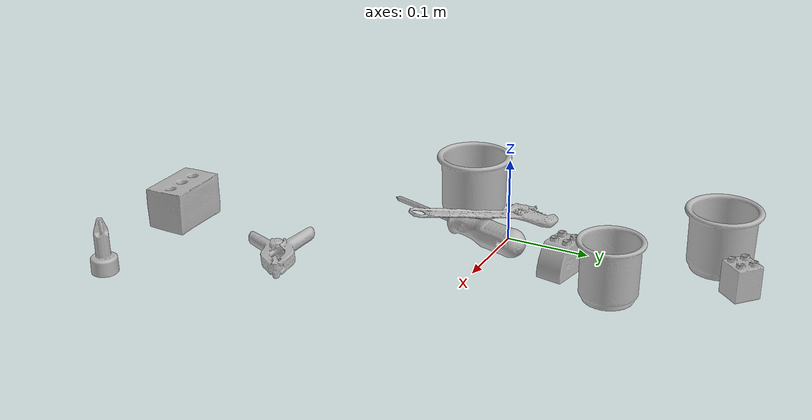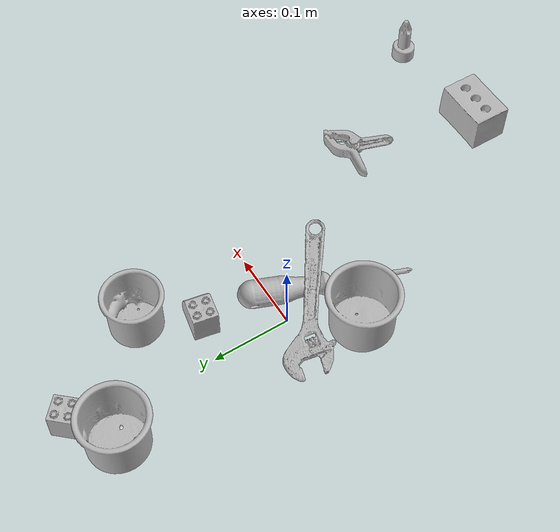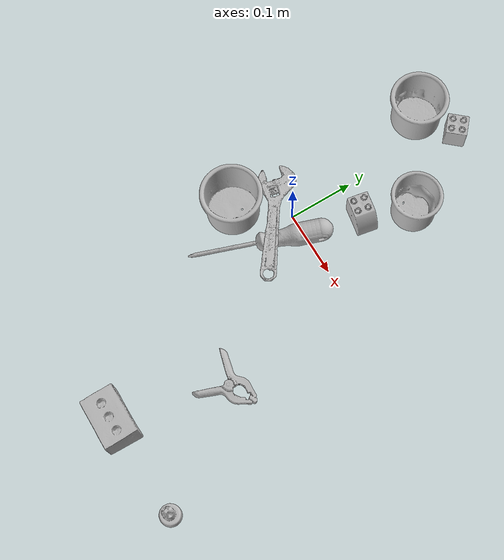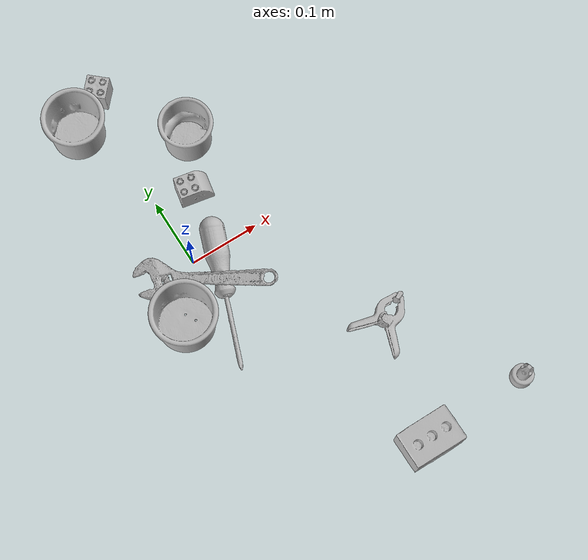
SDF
<sdf version="1.4">
  <world name="default">
    <light name="light1" type="point">
      <pose>0 0 1 0 0 0</pose>
      <diffuse>3 3 3 1</diffuse>
      <specular>3 3 3 1</specular>
    </light>
    <light name="light2" type="point">
      <pose>0 0.5 2 0 0 0</pose>
      <diffuse>1 1 1 1</diffuse>
      <specular>1 1 1 1</specular>
    </light>
    <light name="light3" type="point">
      <pose>0 0.5 2 0 0 0</pose>
      <diffuse>3 3 3 1</diffuse>
      <specular>3 3 3 1</specular>
    </light>
    <scene>
      <ambient>0.7 0.7 0.7</ambient>
    </scene>
    <model name="cup1">
      <link name="link_cup1">
        <collision name="default">
          <geometry>
            <mesh>
              <uri>model://h_cups/collision_meshes/collision.obj</uri>
              <scale>1.0 1.0 1.0</scale>
            </mesh>
          </geometry>
          <surface>
            <friction>
              <ode>
                <mu>0.5</mu>
                <mu2>0.5</mu2>
              </ode>
            </friction>
          <contact>
        <ode>
            <max_vel>0</max_vel>
            <min_depth>0.0001</min_depth>
            <kp>1e8</kp>
        </ode>
    </contact></surface>
        </collision>
        <visual name="default">
          <geometry>
            <mesh>
              <uri>model://h_cups/visual_meshes/visual.dae</uri>
              <scale>1.0 1.0 1.0</scale>
            </mesh>
          </geometry>
        </visual>
        <inertial>
          <mass>0.09017354249954224</mass>
          <pose>-2.702734127524309e-05 0.00023018653155304492 -0.0018405391601845622 -0.024362361674121313 0.06545247408237653 0.12884890922354367</pose>
          <inertia>
            <ixx>0.00011645493</ixx>
            <iyy>0.000115065246</iyy>
            <izz>0.00012212929</izz>
            <ixy>0</ixy>
            <ixz>0</ixz>
            <iyz>0</iyz>
          </inertia>
        </inertial>
      </link>
      <pose>-0.05333087965846062 -0.07057374715805054 0.037757985293865204 -1.3919903410285669e-07 2.1350784764130816e-08 -2.7313373890721477</pose>
    </model>
    <model name="cup2">
      <link name="link_cup2">
        <collision name="default">
          <geometry>
            <mesh>
              <uri>model://g_cups/collision_meshes/collision.obj</uri>
              <scale>1.0 1.0 1.0</scale>
            </mesh>
          </geometry>
          <surface>
            <friction>
              <ode>
                <mu>0.5</mu>
                <mu2>0.5</mu2>
              </ode>
            </friction>
          <contact>
        <ode>
            <max_vel>0</max_vel>
            <min_depth>0.0001</min_depth>
            <kp>1e8</kp>
        </ode>
    </contact></surface>
        </collision>
        <visual name="default">
          <geometry>
            <mesh>
              <uri>model://g_cups/visual_meshes/visual.dae</uri>
              <scale>1.0 1.0 1.0</scale>
            </mesh>
          </geometry>
        </visual>
        <inertial>
          <mass>0.07892031967639923</mass>
          <pose>-0.0007946275873109698 -4.206384619465098e-05 -0.0021329368464648724 -0.21381953376637775 -0.31410844314425407 0.31119468358147234</pose>
          <inertia>
            <ixx>9.211769e-05</ixx>
            <iyy>9.180432e-05</iyy>
            <izz>9.541806e-05</izz>
            <ixy>0</ixy>
            <ixz>0</ixz>
            <iyz>0</iyz>
          </inertia>
        </inertial>
      </link>
      <pose>-0.038008179515600204 0.24310310184955597 0.03720301389694214 -1.0805217675938377e-07 -9.100595181248297e-07 0.22009548032090365</pose>
    </model>
    <model name="cup3">
      <link name="link_cup3">
        <collision name="default">
          <geometry>
            <mesh>
              <uri>model://e_cups/collision_meshes/collision.obj</uri>
              <scale>1.0 1.0 1.0</scale>
            </mesh>
          </geometry>
          <surface>
            <friction>
              <ode>
                <mu>0.5</mu>
                <mu2>0.5</mu2>
              </ode>
            </friction>
          <contact>
        <ode>
            <max_vel>0</max_vel>
            <min_depth>0.0001</min_depth>
            <kp>1e8</kp>
        </ode>
    </contact></surface>
        </collision>
        <visual name="default">
          <geometry>
            <mesh>
              <uri>model://e_cups/visual_meshes/visual.dae</uri>
              <scale>1.0 1.0 1.0</scale>
            </mesh>
          </geometry>
        </visual>
        <inertial>
          <mass>0.08743876963853836</mass>
          <pose>0.0011355745373293757 0.0028797851409763098 -0.0038829741533845663 0.6952398618358687 0.08767880823198544 -0.5235243888876825</pose>
          <inertia>
            <ixx>7.709911e-05</ixx>
            <iyy>8.05796e-05</iyy>
            <izz>7.3715666e-05</izz>
            <ixy>0</ixy>
            <ixz>0</ixz>
            <iyz>0</iyz>
          </inertia>
        </inertial>
      </link>
      <pose>0.08728374540805817 0.15526725351810455 0.0355997309088707 0.00016208087019536227 -0.00020505495736445622 0.1845838882794242</pose>
    </model>
    <model name="toy1">
      <link name="link_toy1">
        <collision name="default">
          <geometry>
            <mesh>
              <uri>model://d_lego_duplo/collision_meshes/collision.obj</uri>
              <scale>1.0 1.0 1.0</scale>
            </mesh>
          </geometry>
          <surface>
            <friction>
              <ode>
                <mu>0.5</mu>
                <mu2>0.5</mu2>
              </ode>
            </friction>
          <contact>
        <ode>
            <max_vel>0</max_vel>
            <min_depth>0.0001</min_depth>
            <kp>1e8</kp>
        </ode>
    </contact></surface>
        </collision>
        <visual name="default">
          <geometry>
            <mesh>
              <uri>model://d_lego_duplo/visual_meshes/visual.dae</uri>
              <scale>1.0 1.0 1.0</scale>
            </mesh>
          </geometry>
        </visual>
        <inertial>
          <mass>0.04292278364300728</mass>
          <pose>0.002830562647432089 0.00016366151976399124 0.0008589805802330375 0.08010895821025366 -0.3835521883517419 0.0010296961053417666</pose>
          <inertia>
            <ixx>8.309218e-06</ixx>
            <iyy>1.1793034e-05</iyy>
            <izz>1.1372727e-05</izz>
            <ixy>0</ixy>
            <ixz>0</ixz>
            <iyz>0</iyz>
          </inertia>
        </inertial>
      </link>
      <pose>0.05521514266729355 0.0865660309791565 0.021739916875958443 -7.880303507453776e-06 -1.0694147994011861e-05 2.9574148942251677</pose>
    </model>
    <model name="toy2">
      <link name="link_toy2">
        <collision name="default">
          <geometry>
            <mesh>
              <uri>model://foam_brick/collision_meshes/collision.obj</uri>
              <scale>1.0 1.0 1.0</scale>
            </mesh>
          </geometry>
          <surface>
            <friction>
              <ode>
                <mu>0.5</mu>
                <mu2>0.5</mu2>
              </ode>
            </friction>
          <contact>
        <ode>
            <max_vel>0</max_vel>
            <min_depth>0.0001</min_depth>
            <kp>1e8</kp>
        </ode>
    </contact></surface>
        </collision>
        <visual name="default">
          <geometry>
            <mesh>
              <uri>model://foam_brick/visual_meshes/visual.dae</uri>
              <scale>1.0 1.0 1.0</scale>
            </mesh>
          </geometry>
        </visual>
        <inertial>
          <mass>0.21218973398208618</mass>
          <pose>-0.0002522472059354186 0.00034584320383146405 -0.0002532101352699101 -0.2940188212014215 0.017274433063530492 -0.0007449861184219897</pose>
          <inertia>
            <ixx>9.268843e-05</ixx>
            <iyy>0.00014798183</iyy>
            <izz>0.00014986254</izz>
            <ixy>0</ixy>
            <ixz>0</ixz>
            <iyz>0</iyz>
          </inertia>
        </inertial>
      </link>
      <pose>0.13178546726703644 -0.3742973208427429 0.02592279575765133 0.013416543497075412 0.0041530144279081456 -0.007220770687263195</pose>
    </model>
    <model name="toy3">
      <link name="link_toy3">
        <collision name="default">
          <geometry>
            <mesh>
              <uri>model://f_lego_duplo/collision_meshes/collision.obj</uri>
              <scale>1.0 1.0 1.0</scale>
            </mesh>
          </geometry>
          <surface>
            <friction>
              <ode>
                <mu>0.5</mu>
                <mu2>0.5</mu2>
              </ode>
            </friction>
          <contact>
        <ode>
            <max_vel>0</max_vel>
            <min_depth>0.0001</min_depth>
            <kp>1e8</kp>
        </ode>
    </contact></surface>
        </collision>
        <visual name="default">
          <geometry>
            <mesh>
              <uri>model://f_lego_duplo/visual_meshes/visual.dae</uri>
              <scale>1.0 1.0 1.0</scale>
            </mesh>
          </geometry>
        </visual>
        <inertial>
          <mass>0.024021470919251442</mass>
          <pose>2.3694197807344608e-05 0.00013393140397965908 0.0018837875686585903 0.02983869554967358 -0.014424868856459862 -0.6756716113514201</pose>
          <inertia>
            <ixx>5.075869e-06</ixx>
            <iyy>5.1210886e-06</iyy>
            <izz>4.4060694e-06</izz>
            <ixy>0</ixy>
            <ixz>0</ixz>
            <iyz>0</iyz>
          </inertia>
        </inertial>
      </link>
      <pose>0.015457846224308014 0.2799186110496521 0.02187100425362587 -7.971045574004192e-07 -6.346118558662494e-07 0.8392728632627802</pose>
    </model>
    <model name="toy4">
      <link name="link_toy4">
        <collision name="default">
          <geometry>
            <mesh>
              <uri>model://d_toy_airplane/collision_meshes/collision.obj</uri>
              <scale>1.0 1.0 1.0</scale>
            </mesh>
          </geometry>
          <surface>
            <friction>
              <ode>
                <mu>0.5</mu>
                <mu2>0.5</mu2>
              </ode>
            </friction>
          <contact>
        <ode>
            <max_vel>0</max_vel>
            <min_depth>0.0001</min_depth>
            <kp>1e8</kp>
        </ode>
    </contact></surface>
        </collision>
        <visual name="default">
          <geometry>
            <mesh>
              <uri>model://d_toy_airplane/visual_meshes/visual.dae</uri>
              <scale>1.0 1.0 1.0</scale>
            </mesh>
          </geometry>
        </visual>
        <inertial>
          <mass>0.024586454033851624</mass>
          <pose>9.410288475919515e-05 -5.809331560158171e-05 -0.011728096753358841 0.0002662237897190017 0.004679022855495211 0.5193045098973154</pose>
          <inertia>
            <ixx>7.370539e-06</ixx>
            <iyy>7.376099e-06</iyy>
            <izz>2.2252145e-06</izz>
            <ixy>0</ixy>
            <ixz>0</ixz>
            <iyz>0</iyz>
          </inertia>
        </inertial>
      </link>
      <pose>0.28455451130867004 -0.36955758929252625 0.03333881497383118 5.860763588629202e-05 -9.94487695724087e-05 -2.8587029574382514</pose>
    </model>
    <model name="hardware1">
      <link name="link_hardware1">
        <collision name="default">
          <geometry>
            <mesh>
              <uri>model://phillips_screwdriver/collision_meshes/collision.obj</uri>
              <scale>1.0 1.0 1.0</scale>
            </mesh>
          </geometry>
          <surface>
            <friction>
              <ode>
                <mu>0.5</mu>
                <mu2>0.5</mu2>
              </ode>
            </friction>
          <contact>
        <ode>
            <max_vel>0</max_vel>
            <min_depth>0.0001</min_depth>
            <kp>1e8</kp>
        </ode>
    </contact></surface>
        </collision>
        <visual name="default">
          <geometry>
            <mesh>
              <uri>model://phillips_screwdriver/visual_meshes/visual.dae</uri>
              <scale>1.0 1.0 1.0</scale>
            </mesh>
          </geometry>
        </visual>
        <inertial>
          <mass>0.10962587594985962</mass>
          <pose>-0.04777182266116142 0.0010362300090491772 -0.00045555492397397757 -0.1572763288958183 0.005850995451121224 -0.002156747064170485</pose>
          <inertia>
            <ixx>1.2879916e-05</ixx>
            <iyy>0.00016149164</iyy>
            <izz>0.00016162884</izz>
            <ixy>0</ixy>
            <ixz>0</ixz>
            <iyz>0</iyz>
          </inertia>
        </inertial>
      </link>
      <pose>0.013140449300408363 -0.05978728458285332 0.01540965773165226 0.0656730093872746 0.037571666561030836 -1.9223575238897757</pose>
    </model>
    <model name="hardware2">
      <link name="link_hardware2">
        <collision name="default">
          <geometry>
            <mesh>
              <uri>model://adjustable_wrench/collision_meshes/collision.obj</uri>
              <scale>1.0 1.0 1.0</scale>
            </mesh>
          </geometry>
          <surface>
            <friction>
              <ode>
                <mu>0.5</mu>
                <mu2>0.5</mu2>
              </ode>
            </friction>
          <contact>
        <ode>
            <max_vel>0</max_vel>
            <min_depth>0.0001</min_depth>
            <kp>1e8</kp>
        </ode>
    </contact></surface>
        </collision>
        <visual name="default">
          <geometry>
            <mesh>
              <uri>model://adjustable_wrench/visual_meshes/visual.dae</uri>
              <scale>1.0 1.0 1.0</scale>
            </mesh>
          </geometry>
        </visual>
        <inertial>
          <mass>0.02999398298561573</mass>
          <pose>0.03740980848670006 -0.002896887483075261 -0.001114922808483243 -0.014473357351062987 0.006656019865341655 -0.010954188906160397</pose>
          <inertia>
            <ixx>6.138701e-06</ixx>
            <iyy>7.184631e-05</iyy>
            <izz>7.765895e-05</izz>
            <ixy>0</ixy>
            <ixz>0</ixz>
            <iyz>0</iyz>
          </inertia>
        </inertial>
      </link>
      <pose>-0.006288325414061546 -0.03293725848197937 0.024708203971385956 0.008524160941113653 0.2238047412567915 2.5094758758202054</pose>
    </model>
    <model name="hardware3">
      <link name="link_hardware3">
        <collision name="default">
          <geometry>
            <mesh>
              <uri>model://medium_clamp/collision_meshes/collision.obj</uri>
              <scale>1.0 1.0 1.0</scale>
            </mesh>
          </geometry>
          <surface>
            <friction>
              <ode>
                <mu>0.5</mu>
                <mu2>0.5</mu2>
              </ode>
            </friction>
          <contact>
        <ode>
            <max_vel>0</max_vel>
            <min_depth>0.0001</min_depth>
            <kp>1e8</kp>
        </ode>
    </contact></surface>
        </collision>
        <visual name="default">
          <geometry>
            <mesh>
              <uri>model://medium_clamp/visual_meshes/visual.dae</uri>
              <scale>1.0 1.0 1.0</scale>
            </mesh>
          </geometry>
        </visual>
        <inertial>
          <mass>0.038817502558231354</mass>
          <pose>0.005390993785113096 0.0003953237028326839 -0.0001222158462041989 -0.0012269117309439718 0.002584502422387493 0.03820772500943274</pose>
          <inertia>
            <ixx>1.05752815e-05</ixx>
            <iyy>1.539003e-05</iyy>
            <izz>2.3705257e-05</izz>
            <ixy>0</ixy>
            <ixz>0</ixz>
            <iyz>0</iyz>
          </inertia>
        </inertial>
      </link>
      <pose>0.17210927605628967 -0.21108296513557434 0.013533583842217922 0.07742766289596796 0.08544966150269936 0.4800924563422166</pose>
    </model>
  <physics type="ode">
      <max_contacts>50</max_contacts>
      <ode>
        <solver>
          <type>quick</type>
          <iters>75</iters>
        </solver>
        <constraints>
          <contact_max_correcting_vel>0</contact_max_correcting_vel>
          <contact_surface_layer>0</contact_surface_layer>
        </constraints>
      </ode>
    </physics></world>
</sdf>
